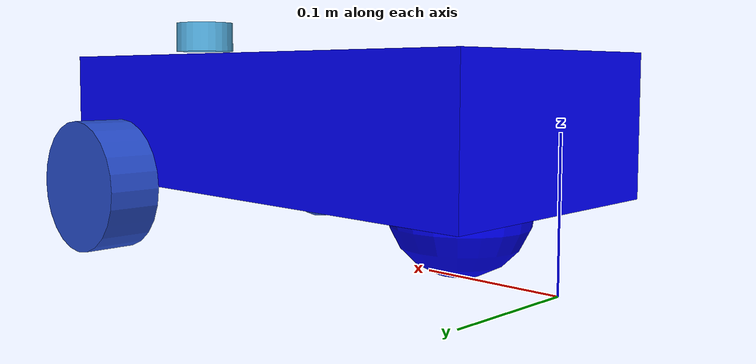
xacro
<?xml version="1.0"?>

<robot name="aster" xmlns:xacro="http://www.ros.org/wiki/xacro">

	<xacro:include filename="$(find aster_description)/urdf/materials.xacro"/>
	<xacro:include filename="$(find aster_description)/urdf/aster.gazebo"/>
	<xacro:include filename="$(find aster_description)/urdf/macros.xacro"/>

	<link name="chassis">
		<inertial>
			<mass value="0.906"/>
			<origin xyz="0.2 0 0.1" rpy="0 0 0"/>
			<inertia ixx="5.840e-3" ixy="0.0" ixz="1.724e-5" iyy="1.664e-2" iyz="0.0" izz="1.961e-2"/>
		</inertial>
		<collision name="collision">
			<origin xyz="0.2 0 0.1" rpy="0 0 0"/>
			<geometry>
				<box size="0.4 0.2 0.1"/>
			</geometry>
			<material name="blue"/>
		</collision>
		<collision name="caster_collision">
			<origin xyz="0.075 0.0 0.050"/>
			<geometry>
				<sphere radius="0.05"/>
			</geometry>
			<material name="blue"/>
		</collision>
		<visual>
			<origin xyz="0.2 0 0.1" rpy="0 0 0"/>
			<geometry>
				<box size="0.4 0.2 0.1"/>
			</geometry>

			<material name="blue"/>
		</visual>
		<visual name="caster_visual">
			<origin xyz="0.075 0.0 0.050"/>
			<geometry>
				<sphere radius="0.05"/>
			</geometry>
			<material name="blue"/>
		</visual>

	</link>

	<link name="sensor_laser">
		<inertial>
			<origin xyz="0 0 0" rpy="0 0 0"/>
			<mass value="0.052"/>
			<inertia ixx="1.076e-5" ixy="0.0" ixz="0.0" iyy="1.076e-5" iyz="0.0" izz="1.614e-5"/>
		</inertial>
		<visual name="visual_laser_sensor">
			<origin xyz="0 0 0" rpy="0 0 0"/>
			<geometry>
				<cylinder radius="0.025" length="0.025"/>
			</geometry>
		</visual>
		<collision name="collisison_laser_sensor">
			<origin xyz="0 0 0" rpy="0 0 0"/>
			<geometry>
				<cylinder radius="0.025" length="0.025"/>
			</geometry>
		</collision>
	</link>

	<joint name="joint_sensor_laser" type="fixed">
		<parent link="chassis"/>
		<child link="sensor_laser"/>
		<origin xyz="0.358 0.0 0.168" rpy="0 0 0"  />
	</joint>

	<xacro:wheel name="right_wheel" />
	<xacro:wheel_joint name="right_wheel_joint" child="right_wheel" origin_xyz="0.325 -0.125 0.050" />

	<xacro:wheel name="left_wheel" />
	<xacro:wheel_joint name="left_wheel_joint" child="left_wheel" origin_xyz="0.325 0.125 0.050" />
</robot>

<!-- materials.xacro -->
<robot>
	<material name="blue">
		<color rgba="0 0.0 1.0 1.0"/>
	</material>
	<gazebo reference="chassis">
		<material>Gazebo/Orange</material>
	</gazebo>
	<gazebo reference="right_wheel">
		<material>Gazebo/Blue</material>
	</gazebo>
	<gazebo reference="left_wheel">
		<material>Gazebo/Blue</material>
	</gazebo>
	<gazebo reference="visual_laser_sensor">
		<material>Gazebo/White</material>
	</gazebo>

</robot>

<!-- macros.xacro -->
<robot>
<macro name="wheel" params="name">
	<link name="${name}">
		<inertial>
			<mass value="0.327"/>
			<origin rpy="0 1.5707 0" xyz="0 0 0"/>
			<inertia ixx="2.478e-4" ixy="0.0" ixz="0.0" iyy="4.084e-4" iyz="0.0" izz="2.478e-4"/>
		</inertial>
		<visual>
			<origin rpy="1.5707 0 0" xyz="0 0 0"/>
			<geometry>
				<cylinder length="0.04" radius="0.05"/>
			</geometry>
		</visual>
		<collision name="$collision_{name">
			<origin rpy="1.5707 0 0" xyz="0 0 0"/>
			<geometry>
				<cylinder length="0.04" radius="0.05"/>
			</geometry>
		</collision>
	</link>
</macro>
<macro name="wheel_joint" params="name child origin_xyz">
	<joint name="${name}" type="continuous">
		<origin rpy="0 0 0" xyz="${origin_xyz}"/>
		<parent link="chassis"/>
		<child link="${child}"/>
		<axis xyz="0 1 0" rpy="0 0 0"/>
		<joint_properties damping="1.0" friction="1.0"/>
		<limit effort="1000" velocity="1000"/>
	</joint>
</macro>
</robot>
